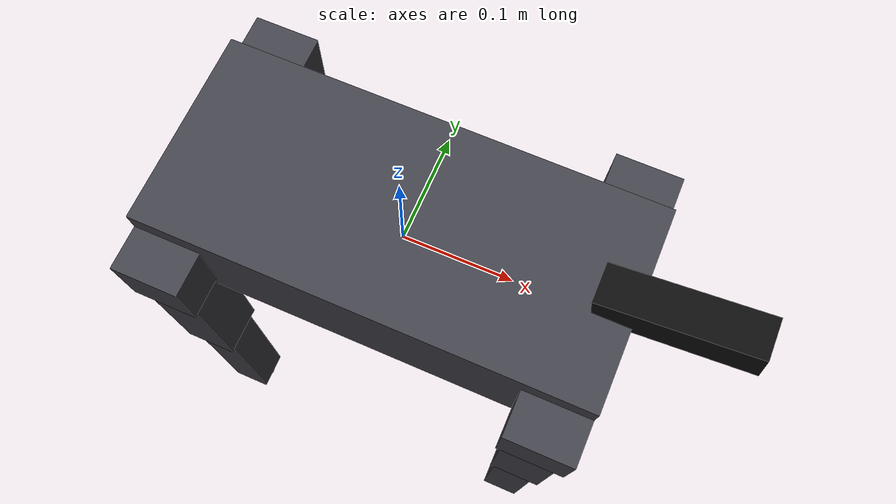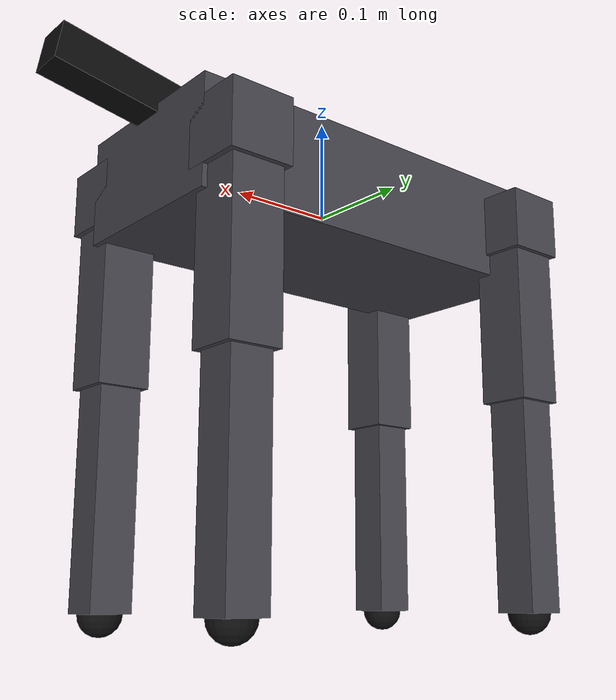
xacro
<?xml version="1.0"?>
<robot xmlns:xacro="http://www.ros.org/wiki/xacro" name="bpx">

  <xacro:arg name="use_sim" default="false"/>

  <!-- ===================== Body ===================== -->
  <link name="base_link">
    <visual>
      <origin xyz="0 0 0" rpy="0 0 0"/>
      <geometry>
        <box size="0.40 0.18 0.10"/>
      </geometry>
      <material name="body_grey">
        <color rgba="0.25 0.25 0.28 1.0"/>
      </material>
    </visual>
    <inertial>
      <origin xyz="0 0 0"/>
      <mass value="8.0"/>
      <inertia ixx="0.03" ixy="0" ixz="0" iyy="0.12" iyz="0" izz="0.14"/>
    </inertial>
  </link>

  <!-- ============ Perception head (Insight 9) ============ -->
  <!-- Placeholder mount: front-top of body, angled down ~10 deg. -->
  <link name="insight9_mount"/>
  <joint name="insight9_mount_joint" type="fixed">
    <parent link="base_link"/>
    <child link="insight9_mount"/>
    <origin xyz="0.20 0.0 0.06" rpy="0 -0.1745 0"/>
  </joint>

  <link name="insight9_camera_link">
    <visual>
      <geometry>
        <box size="0.129 0.035 0.035"/>
      </geometry>
      <material name="camera_black">
        <color rgba="0.05 0.05 0.05 1.0"/>
      </material>
    </visual>
    <inertial>
      <mass value="0.176"/>
      <inertia ixx="0.0002" ixy="0" ixz="0" iyy="0.0003" iyz="0" izz="0.0003"/>
    </inertial>
  </link>
  <joint name="insight9_camera_joint" type="fixed">
    <parent link="insight9_mount"/>
    <child link="insight9_camera_link"/>
    <!-- Looper Insight 9: lens is offset along the 129 mm body. -->
    <origin xyz="0.03 0 0" rpy="0 0 0"/>
  </joint>

  <!-- Optical frame: +Z forward, +X right, +Y down (ROS convention). -->
  <link name="insight9_camera_optical"/>
  <joint name="insight9_camera_optical_joint" type="fixed">
    <parent link="insight9_camera_link"/>
    <child link="insight9_camera_optical"/>
    <origin xyz="0 0 0" rpy="-1.5708 0 -1.5708"/>
  </joint>

  <!-- ===================== Legs ===================== -->
  <xacro:macro name="leg" params="prefix x_offset y_offset">
    <link name="${prefix}_hip_roll_link">
      <visual>
        <geometry><box size="0.06 0.06 0.06"/></geometry>
        <material name="body_grey"/>
      </visual>
      <inertial>
        <mass value="0.4"/>
        <inertia ixx="0.0004" ixy="0" ixz="0" iyy="0.0004" iyz="0" izz="0.0004"/>
      </inertial>
    </link>
    <joint name="${prefix}_hip_roll_joint" type="revolute">
      <parent link="base_link"/>
      <child link="${prefix}_hip_roll_link"/>
      <!-- TODO(calibration): axis and origin from MirrorMe CAD. -->
      <origin xyz="${x_offset} ${y_offset} 0" rpy="0 0 0"/>
      <axis xyz="1 0 0"/>
      <limit lower="-0.8" upper="0.8" effort="60.0" velocity="20.0"/>
    </joint>

    <link name="${prefix}_thigh_link">
      <visual>
        <origin xyz="0 0 -0.09"/>
        <geometry><box size="0.05 0.05 0.18"/></geometry>
        <material name="body_grey"/>
      </visual>
      <inertial>
        <origin xyz="0 0 -0.09"/>
        <mass value="0.6"/>
        <inertia ixx="0.002" ixy="0" ixz="0" iyy="0.002" iyz="0" izz="0.0008"/>
      </inertial>
    </link>
    <joint name="${prefix}_hip_pitch_joint" type="revolute">
      <parent link="${prefix}_hip_roll_link"/>
      <child link="${prefix}_thigh_link"/>
      <origin xyz="0 0 0" rpy="0 0 0"/>
      <axis xyz="0 1 0"/>
      <limit lower="-1.6" upper="1.6" effort="60.0" velocity="20.0"/>
    </joint>

    <link name="${prefix}_shank_link">
      <visual>
        <origin xyz="0 0 -0.10"/>
        <geometry><box size="0.04 0.04 0.20"/></geometry>
        <material name="body_grey"/>
      </visual>
      <inertial>
        <origin xyz="0 0 -0.10"/>
        <mass value="0.3"/>
        <inertia ixx="0.001" ixy="0" ixz="0" iyy="0.001" iyz="0" izz="0.0004"/>
      </inertial>
    </link>
    <joint name="${prefix}_knee_joint" type="revolute">
      <parent link="${prefix}_thigh_link"/>
      <child link="${prefix}_shank_link"/>
      <origin xyz="0 0 -0.18" rpy="0 0 0"/>
      <axis xyz="0 1 0"/>
      <limit lower="-2.2" upper="0.3" effort="60.0" velocity="20.0"/>
    </joint>

    <link name="${prefix}_foot">
      <visual>
        <geometry><sphere radius="0.02"/></geometry>
        <material name="foot_black">
          <color rgba="0.05 0.05 0.05 1.0"/>
        </material>
      </visual>
      <inertial>
        <mass value="0.05"/>
        <inertia ixx="0.00001" ixy="0" ixz="0" iyy="0.00001" iyz="0" izz="0.00001"/>
      </inertial>
    </link>
    <joint name="${prefix}_foot_joint" type="fixed">
      <parent link="${prefix}_shank_link"/>
      <child link="${prefix}_foot"/>
      <origin xyz="0 0 -0.20" rpy="0 0 0"/>
    </joint>
  </xacro:macro>

  <xacro:leg prefix="fl" x_offset="0.17" y_offset="0.10"/>
  <xacro:leg prefix="fr" x_offset="0.17" y_offset="-0.10"/>
  <xacro:leg prefix="hl" x_offset="-0.17" y_offset="0.10"/>
  <xacro:leg prefix="hr" x_offset="-0.17" y_offset="-0.10"/>

</robot>
